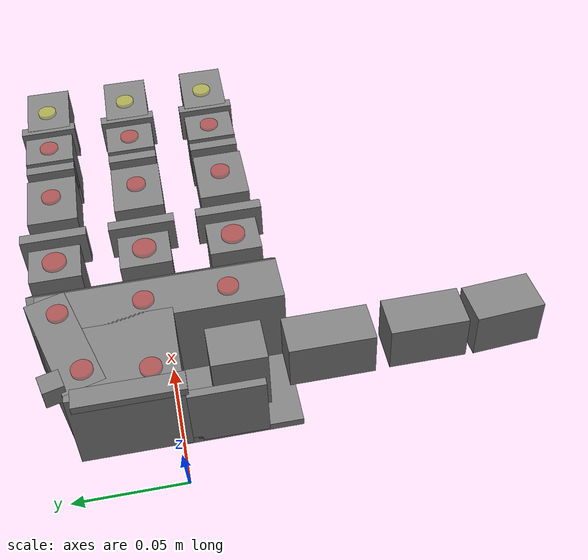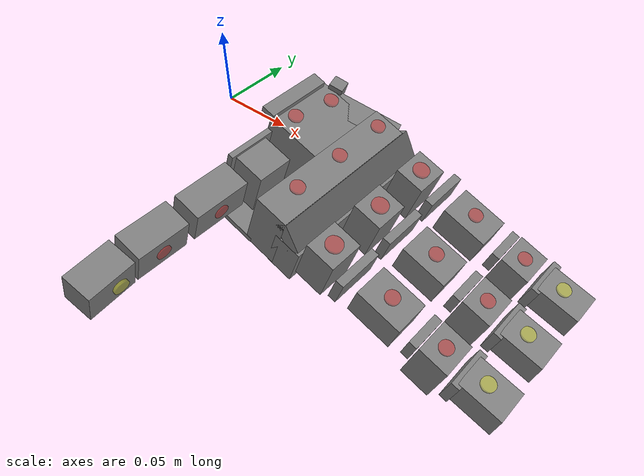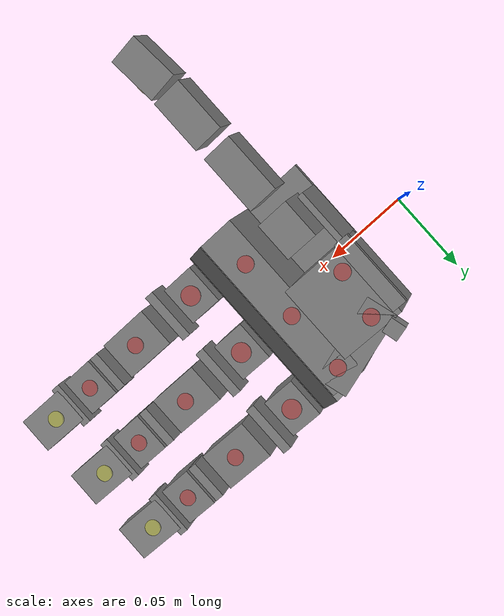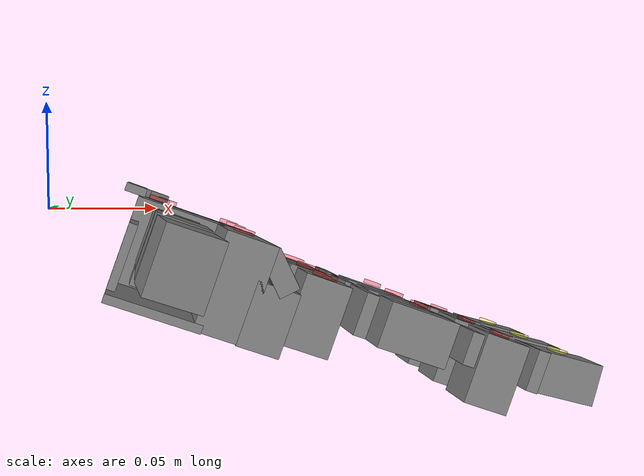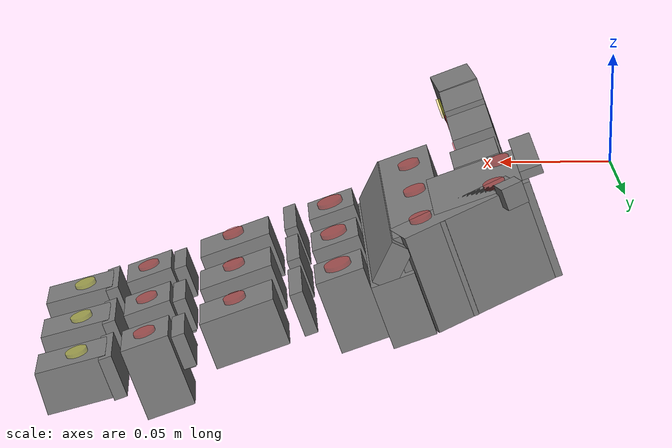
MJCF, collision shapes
<mujoco model="leap_rh">
  <compiler angle="radian" autolimits="true"/>

  <option timestep="0.01" integrator="Euler" iterations="5" ls_iterations="8">
    <flag eulerdamp="disable"/>
  </option>

  <custom>
    <numeric data="30" name="max_contact_points"/>
    <numeric data="12" name="max_geom_pairs"/>
  </custom>

  <asset>
    <material name="black" rgba="0.2 0.2 0.2 1"/>
    <material name="gray" rgba="0.5 0.5 0.5 1"/>
    <mesh name="leap_mount" file="meshes/leap_mount.obj"/>
    <!-- Example path to palm right -->
    <!-- mujoco_playground/external_deps/mujoco_menagerie/leap_hand/assets/palm_right.obj -->
    <!-- original path, incorrect. -->
    <!-- correct path -->
    <mesh name="palm" file="../../../../external_deps/mujoco_menagerie/leap_hand/assets/palm_right.obj"/>
    <mesh name="base" file="../../../../external_deps/mujoco_menagerie/leap_hand/assets/base.obj"/>
    <mesh name="proximal" file="../../../../external_deps/mujoco_menagerie/leap_hand/assets/proximal.obj"/>
    <mesh name="medial" file="../../../../external_deps/mujoco_menagerie/leap_hand/assets/medial.obj"/>
    <mesh name="distal" file="../../../../external_deps/mujoco_menagerie/leap_hand/assets/distal.obj"/>
    <mesh name="tip" file="../../../../external_deps/mujoco_menagerie/leap_hand/assets/tip.obj"/>
    <mesh name="thumb_base" file="../../../../external_deps/mujoco_menagerie/leap_hand/assets/thumb_base.obj"/>
    <mesh name="thumb_proximal" file="../../../../external_deps/mujoco_menagerie/leap_hand/assets/thumb_proximal.obj"/>
    <mesh name="thumb_distal" file="../../../../external_deps/mujoco_menagerie/leap_hand/assets/thumb_distal.obj"/>
    <mesh name="thumb_tip" file="../../../../external_deps/mujoco_menagerie/leap_hand/assets/thumb_tip.obj"/>
  </asset>

  <default>
    <default class="leap_touch">
      <site type="box" size="0.005 0.005 0.005" rgba="0.8 0.8 0.8 0.15" group="4"/>
    </default>
    <default class="leap_rh">
      <geom group="3" friction="0.2" solref="0.02 1.5" solimp="0.9 0.99 0.001"/>
      <default class="visual">
        <geom group="2" type="mesh" contype="0" conaffinity="0" density="0" material="black"/>
      </default>
      <default class="tip">
        <geom size="0.01 0.012 0.016" pos="-0.0012969 -0.0335524 0.0145207" quat="0.703552 0.709596 -0.0292107 -0.0252203" type="box" friction="0.7 0.05 0.0002" rgba=".5 .5 .5 .3"/>
      </default>
      <default class="thumb_tip">
        <geom size="0.01 0.012 0.016" pos="-0.00127744 -0.0455619 -0.0144774" quat="0.708101 0.705072 -0.0294902 -0.024426" type="box" friction="0.7 0.05 0.0002" rgba=".5 .5 .5 .3"/>
      </default>

      <position kp="3.0" inheritrange="1"/>
      <!-- armature = rotor inertia * gear ratio^2 = 1.7 * 1e-8 * 288*288 = 0.00149376 -->
      <!-- max torque = 0.2196 = 600/1000*0.366 -->
      <!-- frictionloss = rough guess, small ish value -->
      <joint axis="0 0 -1" damping="0.2" armature="0.00149376" actuatorfrcrange="-0.2196 0.2196" frictionloss="0.02"/>

      <default class="mcp">
        <joint range="-0.314 2.23"/>
      </default>
      <default class="rot">
        <joint range="-1.047 1.047"/>
      </default>
      <default class="pip">
        <joint range="-0.506 1.885"/>
      </default>
      <default class="dip">
        <joint range="-0.366 2.042"/>
      </default>
      <default class="thumb_cmc">
        <joint range="-0.349 2.094"/>
      </default>
      <default class="thumb_axl">
        <joint range="-0.349 2.094"/>
      </default>
      <default class="thumb_mcp">
        <joint range="-0.47 2.443"/>
      </default>
      <default class="thumb_ipl">
        <joint range="-1.34 1.88"/>
      </default>

    </default>
  </default>

  <contact>
    <!-- filter the palm from all other finger bodies except the tips -->
    <exclude body1="palm" body2="if_bs"/>
    <exclude body1="palm" body2="mf_bs"/>
    <exclude body1="palm" body2="rf_bs"/>
    <exclude body1="palm" body2="th_mp"/>

    <exclude body1="palm" body2="if_px"/>
    <exclude body1="palm" body2="mf_px"/>
    <exclude body1="palm" body2="rf_px"/>
    <exclude body1="palm" body2="th_bs"/>

    <exclude body1="palm" body2="if_md"/>
    <exclude body1="palm" body2="mf_md"/>
    <exclude body1="palm" body2="rf_md"/>
    <exclude body1="palm" body2="th_px"/>

    <!-- filter the mount from all finger bodies except the tips -->
    <exclude body1="leap_mount" body2="if_bs"/>
    <exclude body1="leap_mount" body2="mf_bs"/>
    <exclude body1="leap_mount" body2="rf_bs"/>
    <exclude body1="leap_mount" body2="th_mp"/>

    <exclude body1="leap_mount" body2="if_px"/>
    <exclude body1="leap_mount" body2="mf_px"/>
    <exclude body1="leap_mount" body2="rf_px"/>
    <exclude body1="leap_mount" body2="th_bs"/>

    <exclude body1="leap_mount" body2="if_md"/>
    <exclude body1="leap_mount" body2="mf_md"/>
    <exclude body1="leap_mount" body2="rf_md"/>
    <exclude body1="leap_mount" body2="th_px"/>

    <!-- none of the base fingertip geoms can touch each other -->
    <exclude body1="if_bs" body2="mf_bs"/>
    <exclude body1="if_bs" body2="rf_bs"/>
    <exclude body1="mf_bs" body2="rf_bs"/>

    <exclude body1="th_mp" body2="if_bs"/>
    <exclude body1="th_mp" body2="mf_bs"/>
    <exclude body1="th_mp" body2="rf_bs"/>
  </contact>

  <worldbody>
    <light name="spotlight" mode="targetbodycom" target="palm" pos="3 0 4"/>
    <body name="leap_mount" pos="0 0 0" quat="1 0 0 0" childclass="leap_rh">
      <geom name="leap_mount_visual" pos="0 0 0" quat="1 0 0 0" class="visual" mesh="leap_mount"/>
      <geom name="leap_mount_collision_0" size="0.002 0.025 0.005" pos="0.0405 0.02 0.009"
        quat="0.57346234 0 0.81923192 0" type="box"/>
      <geom name="leap_mount_collision_1" size="0.005 0.005 0.005" pos="0.05 0.053 0.002"
        quat="0.4987168 0.64994038 -0.34910175 0.45495826" type="box"/>
      <site name="grasp_site" pos="0.11 0.0 0.03" group="4"/>
      <body name="palm" pos="0.124 -0.0305 -0.06045" quat="0 1 0 -0.175">
        <inertial pos="-0.049542 -0.042914 -0.010227" quat="0.565586 0.427629 -0.574956 0.408254" mass="0.237"
          diaginertia="0.000407345 0.000304759 0.000180736"/>
        <site name="palm_touch_center" type="cylinder" pos="-0.05 -0.04 -0.036" size="0.005 0.001" quat="1 0 0 0" rgba="1 0 0 0.33"/>
        <site name="palm_touch_right" type="cylinder" pos="-0.05 0 -0.036" size="0.005 0.001" quat="1 0 0 0" rgba="1 0 0 0.33"/>
        <site name="palm_touch_left" type="cylinder" pos="-0.05 -0.08 -0.036" size="0.005 0.001" quat="1 0 0 0" rgba="1 0 0 0.33"/>
        <site name="palm_touch_back" type="cylinder" pos="-0.09 -0.04 -0.036" size="0.005 0.001" quat="1 0 0 0" rgba="1 0 0 0.33"/>
        <site name="palm_touch_back_left" type="cylinder" pos="-0.085 -0.07 -0.036" size="0.005 0.001" quat="1 0 0 0" rgba="1 0 0 0.33"/>
        <geom name="palm_visual" pos="-0.02 0.02575 -0.0347" quat="1 0 0 0" class="visual" mesh="palm"/>
        <site name="palm_touch_if" type="cylinder" size="0.006 0.001" pos="-0.009 0.008 -0.029"  rgba="1 0 0 0.33"/>
        <geom name="palm_collision_1" size="0.011 0.013 0.017" pos="-0.009 0.008 -0.011" type="box"/>

        <site name="palm_touch_mf" type="cylinder" size="0.006 0.001" pos="-0.009 -0.037 -0.029" rgba="1 0 0 0.33"/>
        <geom name="palm_collision_2" size="0.011 0.013 0.017" pos="-0.009 -0.037 -0.011" type="box"/>

        <site name="palm_touch_rf" type="cylinder" size="0.006 0.001" pos="-0.009 -0.082 -0.029" rgba="1 0 0 0.33"/>
        <geom name="palm_collision_3" size="0.011 0.013 0.017" pos="-0.009 -0.082 -0.011" type="box"/>
        <geom name="palm_collision_4" size="0.029 0.01 0.023" pos="-0.066 -0.078 -0.0115" quat="0.989016 0 0 -0.147806" type="box"/>
        <geom name="palm_collision_5" size="0.01 0.06 0.015" pos="-0.03 -0.035 -0.003" type="box"/>
        <geom name="palm_collision_6" size="0.005 0.06 0.01" pos="-0.032 -0.035 -0.024" quat="0.923956 0 0.382499 0" type="box"/>
        <geom name="palm_collision_7" size="0.012 0.058 0.023" pos="-0.048 -0.033 -0.0115" type="box"/>
        <geom name="palm_collision_8" size="0.022 0.026 0.023" pos="-0.078 -0.053 -0.0115" type="box"/>
        <geom name="palm_collision_9" size="0.002 0.018 0.017" pos="-0.098 -0.009 -0.006" type="box"/>
        <geom name="palm_collision_10" size="0.022 0.028 0.002" pos="-0.078 -0.003 0.01" type="box"/>
        <body name="if_bs" pos="-0.007 0.023 -0.0187" quat="0.5 0.5 0.5 -0.5">
          <inertial pos="-0.022516 0.033882 0.016359" quat="0.388092 0.677951 -0.247713 0.573067" mass="0.044"
            diaginertia="1.74972e-05 1.61504e-05 7.21342e-06"/>
          <joint name="if_mcp" class="mcp"/>
          <geom name="if_bs_visual" pos="0.0084 0.0077 0.01465" quat="1 0 0 0" class="visual" mesh="base"/>
          <geom name="if_bs_collision_1" size="0.01 0.003 0.017" pos="0 0.018 0.0147" type="box"/>
          <body name="if_px" pos="-0.0122 0.0381 0.0145" quat="0.500003 -0.5 -0.499997 0.5">
            <inertial pos="0.0075 -0.0002 -0.011" quat="0 0.707107 0 0.707107" mass="0.032"
              diaginertia="4.8853e-06 4.3733e-06 3.0933e-06"/>
            <joint name="if_rot" class="rot"/>
            <geom name="if_px_visual" pos="0.0096 0.0002 0.0007" quat="0.500003 -0.5 -0.5 -0.499997" class="visual"
              mesh="proximal"/>
            <geom name="if_px_collision" size="0.017 0.013 0.011" pos="0.0075 -0.0002 -0.011" type="box"/>
            <site name="if_px_touch" type="cylinder" size="0.005 0.001" pos="0.0075 -0.0002 -0.024" rgba="1 0 0 0.33"/>

            <body name="if_md" pos="0.015 0.0143 -0.013" quat="0.500003 0.5 -0.5 0.499997">
              <inertial pos="0.0054215 -0.029148 0.015" quat="0.687228 0.687228 0.166487 0.166487" mass="0.037"
                diaginertia="8.28004e-06 8.1598e-06 5.39516e-06"/>
              <joint name="if_pip" class="pip"/>
              <geom name="if_md_visual" pos="0.0211 -0.0084 0.0097" quat="2.67949e-08 -1 0 0" class="visual"
                mesh="medial"/>
              <geom name="if_md_collision_1" size="0.008 0.003 0.013" pos="0 -0.02 0.015" type="box"/>
              <geom name="if_md_collision_5" size="0.017 0.011 0.013" pos="0.0075 -0.035 0.015" type="box"/>
              <site name="if_md_touch" type="cylinder" pos="-0.01 -0.035 0.015" size="0.005 0.001" quat="0.7071068 0 0.7071068 0" rgba="1 0 0 0.33"/>
              <body name="if_ds" pos="0 -0.0361 0.0002">
                <inertial pos="-0.0008794 -0.027019 0.014594" quat="0.702905 0.710643 -0.0212937 -0.0214203"
                  mass="0.016" diaginertia="3.71863e-06 3.02396e-06 1.6518e-06"/>
                <joint name="if_dip" class="dip"/>
                <geom name="if_ds_visual" pos="0.0132 -0.0061 0.0144" quat="2.67949e-08 1 0 0" class="visual"
                  mesh="distal"/>
                <geom name="if_ds_collision_1" size="0.01 0.003 0.015" pos="0 -0.017 0.015" type="box"/>
                <geom name="if_tip" class="tip"/>
                <geom type="mesh" mesh="tip" class="visual" material="gray"/>
                <site name="if_tip" pos="0 -0.05 0.015" group="4" />
                <site name="if_tip_touch" type="cylinder" pos="-0.012 -0.03 0.015" size="0.005 0.001" quat="0.7071068 0 0.7071068 0" rgba="1 1 0 0.33"/>
              </body>
            </body>
          </body>
        </body>
        <body name="mf_bs" pos="-0.0071 -0.0224 -0.0187" quat="0.500003 0.5 0.5 -0.499997">
          <inertial pos="-0.022516 0.033882 0.016359" quat="0.388092 0.677951 -0.247713 0.573067" mass="0.044"
            diaginertia="1.74972e-05 1.61504e-05 7.21342e-06"/>
          <joint name="mf_mcp" class="mcp"/>
          <geom name="mf_bs_visual" pos="0.0084 0.0077 0.01465" quat="1 0 0 0" class="visual" mesh="base"/>
          <geom name="mf_bs_collision_1" size="0.01 0.003 0.017" pos="0 0.018 0.0147" type="box"/>
          <body name="mf_px" pos="-0.0122 0.0381 0.0145" quat="0.500003 -0.5 -0.499997 0.5">
            <inertial pos="0.0075 -0.0002 -0.011" quat="0 0.707107 0 0.707107" mass="0.032"
              diaginertia="4.8853e-06 4.3733e-06 3.0933e-06"/>
            <joint name="mf_rot" class="rot"/>
            <geom name="mf_px_visual" pos="0.0096 0.0003 0.0007" quat="0.500003 -0.5 -0.5 -0.499997" class="visual"
              mesh="proximal"/>
            <geom name="mf_px_collision" size="0.017 0.013 0.011" pos="0.0075 -0.0002 -0.011" type="box"/>
            <site name="mf_px_touch" type="cylinder" size="0.005 0.001" pos="0.0075 -0.0002 -0.024" rgba="1 0 0 0.33"/>
            <body name="mf_md" pos="0.015 0.0143 -0.013" quat="0.500003 0.5 -0.5 0.499997">
              <inertial pos="0.0054215 -0.029148 0.015" quat="0.687228 0.687228 0.166487 0.166487" mass="0.037"
                diaginertia="8.28004e-06 8.1598e-06 5.39516e-06"/>
              <joint name="mf_pip" class="pip"/>
              <geom name="mf_md_visual" pos="0.0211 -0.0084 0.0097" quat="1.32679e-06 -1 0 0" class="visual"
                mesh="medial"/>
              <geom name="mf_md_collision_1" size="0.008 0.003 0.013" pos="0 -0.02 0.015" type="box"/>
              <geom name="mf_md_collision_5" size="0.017 0.011 0.013" pos="0.0075 -0.035 0.015" type="box"/>
              <site name="mf_md_touch" type="cylinder" pos="-0.01 -0.035 0.015" size="0.005 0.001" quat="0.7071068 0 0.7071068 0" rgba="1 0 0 0.33"/>
              <body name="mf_ds" pos="0 -0.0361 0.0002">
                <inertial pos="-0.0008794 -0.027019 0.014594" quat="0.702905 0.710643 -0.0212937 -0.0214203"
                  mass="0.016" diaginertia="3.71863e-06 3.02396e-06 1.6518e-06"/>
                <joint name="mf_dip" class="dip"/>
                <geom name="mf_ds_visual" pos="0.0132 -0.0061 0.0145" quat="1.32679e-06 1 0 0" class="visual"
                  mesh="distal"/>
                <geom name="mf_ds_collision_1" size="0.01 0.003 0.015" pos="0 -0.017 0.015" type="box"/>
                <geom name="mf_tip" class="tip"/>
                <geom type="mesh" mesh="tip" class="visual" material="gray"/>
                <site name="mf_tip" pos="0 -0.05 0.015" group="4"/>
                <site name="mf_tip_touch" type="cylinder" pos="-0.012 -0.03 0.015" size="0.005 0.001" quat="0.7071068 0 0.7071068 0" rgba="1 1 0 0.33"/>
              </body>
            </body>
          </body>
        </body>
        <body name="rf_bs" pos="-0.00709 -0.0678 -0.0187" quat="0.500003 0.5 0.5 -0.499997">
          <inertial pos="-0.022516 0.033882 0.016359" quat="0.388092 0.677951 -0.247713 0.573067" mass="0.044"
            diaginertia="1.74972e-05 1.61504e-05 7.21342e-06"/>
          <joint name="rf_mcp" class="mcp"/>
          <geom name="rf_bs_visual" pos="0.0084 0.0077 0.01465" quat="1 0 0 0" class="visual" mesh="base"/>
          <geom name="rf_bs_collision_1" size="0.01 0.003 0.017" pos="0 0.018 0.0147" type="box"/>
          <body name="rf_px" pos="-0.0122 0.0381 0.0145" quat="0.500003 -0.5 -0.499997 0.5">
            <inertial pos="0.0075 -0.0002 -0.011" quat="0 0.707107 0 0.707107" mass="0.032"
              diaginertia="4.8853e-06 4.3733e-06 3.0933e-06"/>
            <joint name="rf_rot" class="rot"/>
            <geom name="rf_px_visual" pos="0.0096 0.0003 0.0007" quat="0.500003 -0.5 -0.5 -0.499997" class="visual"
              mesh="proximal"/>
            <geom name="rf_px_collision" size="0.017 0.013 0.011" pos="0.0075 -0.0002 -0.011" type="box"/>
            <site name="rf_px_touch" type="cylinder" size="0.005 0.001" pos="0.0075 -0.0002 -0.024" rgba="1 0 0 0.33"/>
            <body name="rf_md" pos="0.015 0.0143 -0.013" quat="0.500003 0.5 -0.5 0.499997">
              <inertial pos="0.0054215 -0.029148 0.015" quat="0.687228 0.687228 0.166487 0.166487" mass="0.037"
                diaginertia="8.28004e-06 8.1598e-06 5.39516e-06"/>
              <joint name="rf_pip" class="pip"/>
              <geom name="rf_md_visual" pos="0.0211 -0.0084 0.0097" quat="0 -1 0 0" class="visual" mesh="medial"/>
              <geom name="rf_md_collision_1" size="0.008 0.003 0.013" pos="0 -0.02 0.015" type="box"/>
              <geom name="rf_md_collision_5" size="0.017 0.011 0.013" pos="0.0075 -0.035 0.015" type="box"/>
              <site name="rf_md_touch" type="cylinder" pos="-0.01 -0.035 0.015" size="0.005 0.001" quat="0.7071068 0 0.7071068 0" rgba="1 0 0 0.33"/>
              <body name="rf_ds" pos="0 -0.03609 0.0002">
                <inertial pos="-0.0008794 -0.027019 0.014594" quat="0.702905 0.710643 -0.0212937 -0.0214203"
                  mass="0.016" diaginertia="3.71863e-06 3.02396e-06 1.6518e-06"/>
                <joint name="rf_dip" class="dip"/>
                <geom name="rf_ds_visual" pos="0.0132 -0.0061 0.0145" quat="0 1 0 0" class="visual" mesh="distal"/>
                <geom name="rf_ds_collision_1" size="0.01 0.003 0.015" pos="0 -0.017 0.015" type="box"/>
                <geom name="rf_tip" class="tip"/>
                <geom type="mesh" mesh="tip" class="visual" material="gray"/>
                <site name="rf_tip" pos="0 -0.05 0.015" group="4"/>
                <site name="rf_tip_touch" type="cylinder" pos="-0.012 -0.03 0.015" size="0.005 0.001" quat="0.7071068 0 0.7071068 0" rgba="1 1 0 0.33"/>
              </body>
            </body>
          </body>
        </body>
        <body name="th_mp" pos="-0.0693 -0.0012 -0.0216" quat="0.707109 0 0.707105 0">
          <inertial pos="0.0075 -0.0002 -0.011" quat="0 0.707107 0 0.707107" mass="0.032"
            diaginertia="4.8853e-06 4.3733e-06 3.0933e-06"/>
          <joint name="th_cmc" class="thumb_cmc"/>
          <geom name="th_mp_visual" pos="-0.0053 0.0003 0.00078" quat="0.500003 -0.5 -0.5 -0.499997" class="visual"
            mesh="proximal"/>
          <geom name="th_mp_collision" size="0.017 0.013 0.011" pos="-0.0075 -0.0002 -0.011" type="box"/>
          <body name="th_bs" pos="0 0.0143 -0.013" quat="0.500003 0.5 -0.5 0.499997">
            <inertial pos="0 0 -0.0070806" quat="0.707107 0.707107 0 0" mass="0.003"
              diaginertia="6.1932e-07 5.351e-07 2.1516e-07"/>
            <joint name="th_axl" class="thumb_axl"/>
            <geom name="th_bs_collision_1" pos="0.01196 0 -0.0158" quat="0.707109 0.707105 0 0" class="visual" mesh="thumb_base"/>
            <body name="th_px" pos="0 0.0145 -0.017" quat="0.707109 -0.707105 0 0">
              <inertial pos="-0.0020593 0.015912 -0.013733" quat="0.698518 0.697382 -0.104933 0.121324" mass="0.038"
                diaginertia="9.87104e-06 9.32653e-06 4.36203e-06"/>
              <joint name="th_mcp" class="thumb_mcp"/>
              <geom name="th_px_visual" pos="0.0439 0.0579 -0.0086" quat="1 0 0 0" class="visual" mesh="thumb_proximal"/>
              <geom name="th_px_collision_1" size="0.01 0.02 0.012" pos="0 0.0105 -0.014" type="box"/>
              <site name="th_px_touch" type="cylinder" size="0.005 0.001" pos="0.01 0.0105 -0.014" quat="0.7071068 0 0.7071068 0" rgba="1 0 0 0.33"/>
              <body name="th_ds" pos="0 0.0466 0.0002" quat="1.32679e-06 0 0 1">
                <inertial pos="0.00096191 -0.024203 -0.014419" quat="0.35287 0.311272 -0.632839 0.614904" mass="0.049"
                  diaginertia="2.08591e-05 2.0402e-05 4.71335e-06"/>
                <joint name="th_ipl" class="thumb_ipl"/>
                <geom name="th_ds_visual" pos="0.0625 0.0784 0.0489" quat="1 0 0 0" class="visual" mesh="thumb_distal"/>
                <geom name="th_ds_collision_1" size="0.01 0.018 0.012" pos="0 -0.0085 -0.015" type="box"/>
                <site name="th_ds_touch" type="cylinder" size="0.005 0.001" pos="-0.01 -0.0085 -0.015" quat="0.7071068 0 0.7071068 0" rgba="1 0 0 0.33"/>
                <geom name="th_tip" class="thumb_tip"/>
                <site name="th_tip" pos="0 -0.06 -0.015" group="4"/>
                <site name="th_tip_touch" type="cylinder" pos="-0.012 -0.04 -0.015" size="0.005 0.001" quat="0.7071068 0 0.7071068 0" rgba="1 1 0 0.33"/>
                <geom type="mesh" mesh="thumb_tip" class="visual" material="gray"/>
              </body>
            </body>
          </body>
        </body>
      </body>
    </body>
  </worldbody>

  <actuator>
    <position name="if_mcp_act" joint="if_mcp" class="mcp"/>
    <position name="if_rot_act" joint="if_rot" class="rot"/>
    <position name="if_pip_act" joint="if_pip" class="pip"/>
    <position name="if_dip_act" joint="if_dip" class="dip"/>
    <position name="mf_mcp_act" joint="mf_mcp" class="mcp"/>
    <position name="mf_rot_act" joint="mf_rot" class="rot"/>
    <position name="mf_pip_act" joint="mf_pip" class="pip"/>
    <position name="mf_dip_act" joint="mf_dip" class="dip"/>
    <position name="rf_mcp_act" joint="rf_mcp" class="mcp"/>
    <position name="rf_rot_act" joint="rf_rot" class="rot"/>
    <position name="rf_pip_act" joint="rf_pip" class="pip"/>
    <position name="rf_dip_act" joint="rf_dip" class="dip"/>
    <position name="th_cmc_act" joint="th_cmc" class="thumb_cmc"/>
    <position name="th_axl_act" joint="th_axl" class="thumb_axl"/>
    <position name="th_mcp_act" joint="th_mcp" class="thumb_mcp"/>
    <position name="th_ipl_act" joint="th_ipl" class="thumb_ipl"/>
  </actuator>
  <sensor>
    <touch name="palm_touch_center" site="palm_touch_center"/>
    <touch name="palm_touch_right" site="palm_touch_right"/>
    <touch name="palm_touch_left" site="palm_touch_left"/>
    <touch name="palm_touch_back" site="palm_touch_back"/>
    <touch name="palm_touch_back_left" site="palm_touch_back_left"/>

    <touch name="palm_touch_if" site="palm_touch_if"/>
    <touch name="palm_touch_mf" site="palm_touch_mf"/>
    <touch name="palm_touch_rf" site="palm_touch_rf"/>

    <touch name="if_px_touch" site="if_px_touch"/>
    <touch name="if_md_touch" site="if_md_touch"/>
    <touch name="if_tip_touch" site="if_tip_touch"/>
    <touch name="mf_px_touch" site="mf_px_touch"/>
    <touch name="mf_md_touch" site="mf_md_touch"/>
    <touch name="mf_tip_touch" site="mf_tip_touch"/>
    <touch name="rf_px_touch" site="rf_px_touch"/>
    <touch name="rf_md_touch" site="rf_md_touch"/>
    <touch name="rf_tip_touch" site="rf_tip_touch"/>
    <touch name="th_px_touch" site="th_px_touch"/>
    <touch name="th_ds_touch" site="th_ds_touch"/>
    <touch name="th_tip_touch" site="th_tip_touch"/>
  </sensor>
</mujoco>
